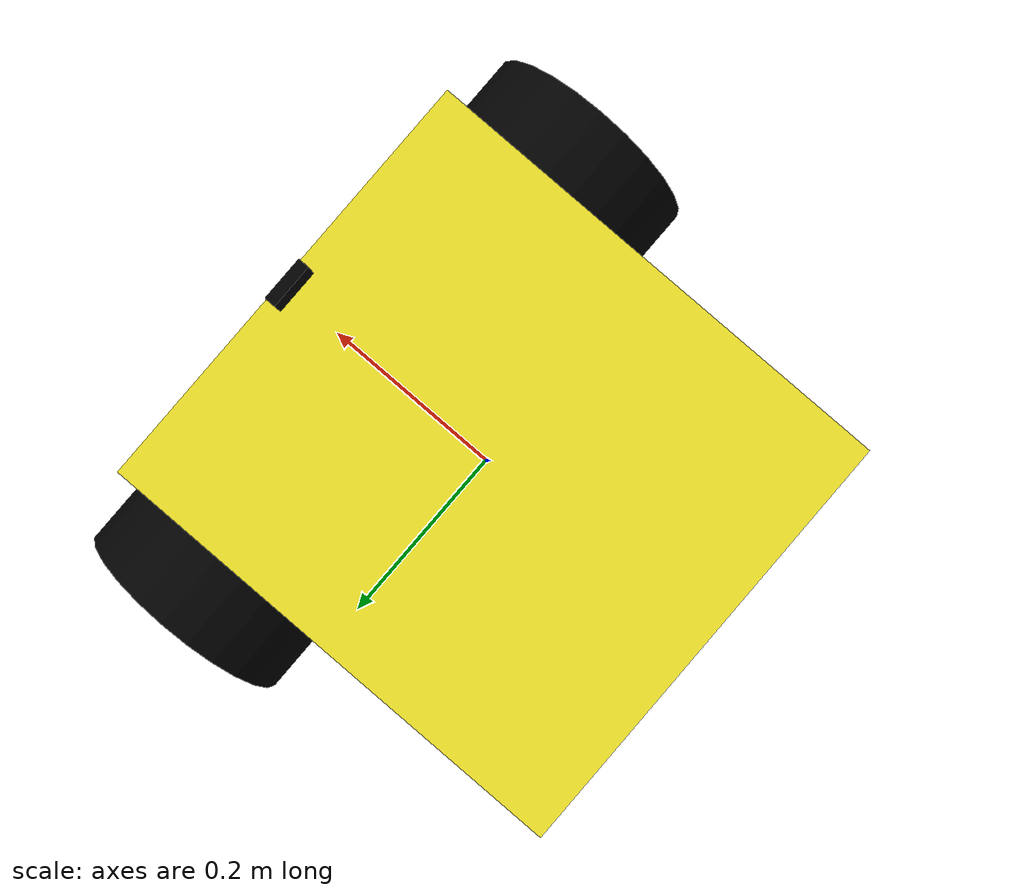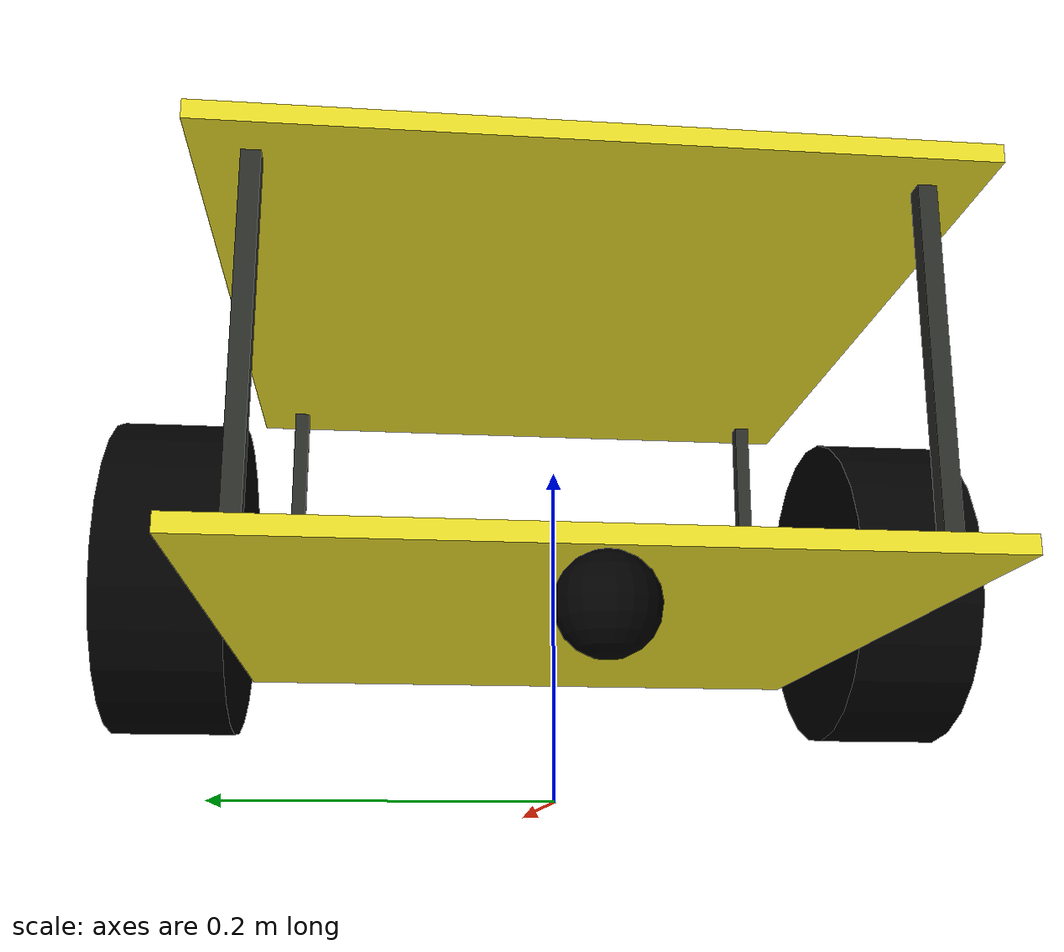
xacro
<?xml version="1.0"?>

<robot name="mrobot" xmlns:xacro="http://www.ros.org/wiki/xacro">

	<xacro:include filename="$(find mrobot_gazebo)/urdf/loui_robot_body.urdf.xacro" />
	<xacro:include filename="$(find mrobot_gazebo)/urdf/camera.xacro" />
	<xacro:include filename="$(find mrobot_gazebo)/urdf/imu.xacro" />

	<xacro:property name="camera_offset_x" value="0.21" />
	<xacro:property name="camera_offset_y" value="0" />
	<xacro:property name="camera_offset_z" value="0.02" />

	<!-- imu parameter:0.12 0 0.005 -->
	<xacro:property name="imu_offset_x" value="0.12" />
	<xacro:property name="imu_offset_y" value="0.0" />
	<xacro:property name="imu_offset_z" value="0.05" />

	<!-- Body of mrobot, with plates, standoffs and Create (including sim sensors) -->
	<mrobot_body/>

	<!-- Attach the Kinect -->
	<joint name="camera_joint" type="fixed">
		<origin xyz="${camera_offset_x} ${camera_offset_y} ${camera_offset_z}" rpy="0 0 0" />
		<parent link="plate_1_link"/>
		<child link="camera_link"/>
	</joint>

	<xacro:usb_camera prefix="camera"/>

	<joint name="imu_joint" type="fixed">
		<origin xyz="${imu_offset_x} ${imu_offset_y} ${imu_offset_z}" rpy="0 0 0" />
		<parent link="base_link"/>
		<child link="imu_link"/>
	</joint>

	<xacro:imu prefix="imu"/>

</robot>

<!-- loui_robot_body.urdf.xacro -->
<robot name="mrobot" xmlns:xacro="http://www.ros.org/wiki/xacro">

    <!-- Defining the colors used in this robot -->
    <material name="Black">
        <color rgba="0 0 0 1"/>
    </material>

    <material name="White">
        <color rgba="1 1 1 1"/>
    </material>

    <material name="Blue">
        <color rgba="0 0 1 1"/>
    </material>

    <material name="Green">
        <color rgba="0 1 0 1"/>
    </material>

    <material name="Red">
        <color rgba="1 0 0 1"/>
    </material>

    <!-- PROPERTY LIST -->
    <!--All units in m-kg-s-radians unit system -->
    <xacro:property name="M_PI" value="3.1415926535897931" />

    <!-- Main body length, width, height and mass -->
    <xacro:property name="base_mass"        value="2.0" />
    <xacro:property name="base_link_length" value="0.44"/>
    <xacro:property name="base_link_width" value="0.40"/>
    <xacro:property name="base_link_height" value="0.01"/>

    <xacro:property name="motor_x" value="0.12"/>

    <!-- Caster radius and mass -->
    <xacro:property name="caster_radius"          value="0.025" />
    <xacro:property name="caster_mass"            value="0.017" />
    <xacro:property name="caster_joint_origin_x"  value="-0.21" />

    <!-- Wheel radius, height and mass -->
    <xacro:property name="wheel_radius" value="0.105" />
    <xacro:property name="wheel_height" value="0.08" />
    <xacro:property name="wheel_mass"   value="2.0" />

    <!-- plate height and mass -->
    <xacro:property name="plate_mass"   value="1.0"/>
    <xacro:property name="plate_height" value="0.20"/>

    <!-- Macro for inertia matrix -->
    <xacro:macro name="sphere_inertial_matrix" params="m r">
        <inertial>
            <mass value="${m}" />
            <inertia ixx="${2*m*r*r/5}" ixy="0" ixz="0"
                iyy="${2*m*r*r/5}" iyz="0"
                izz="${2*m*r*r/5}" />
        </inertial>
    </xacro:macro>

    <xacro:macro name="cylinder_inertial_matrix" params="m r h">
        <inertial>
            <mass value="${m}" />
            <inertia ixx="${m*(3*r*r+h*h)/12}" ixy = "0" ixz = "0"
                iyy="${m*(3*r*r+h*h)/12}" iyz = "0"
                izz="${m*r*r/2}" />
        </inertial>
    </xacro:macro>

    <xacro:macro name="box_inertial_matrix" params="m w h d">
        <inertial>
            <mass value="${m}" />
            <inertia ixx="${m*(h*h+d*d)/12}" ixy = "0" ixz = "0"
                iyy="${m*(w*w+d*d)/12}" iyz = "0"
                izz="${m*(w*w+h*h)/12}" />
        </inertial>
    </xacro:macro>

    <!-- Macro for wheel joint -->
    <xacro:macro name="wheel" params="lr translateY">
        <!-- lr: left, right -->
        <link name="wheel_${lr}_link">
            <visual>
                <origin xyz="0 0 0" rpy="${M_PI/2} 0  0 " />
                <geometry>
                    <cylinder length="${wheel_height}" radius="${wheel_radius}" />
                </geometry>
                <material name="Black" />
            </visual>
            <collision>
                <origin xyz="0 0 0" rpy="${M_PI/2} 0 0 " />
                <geometry>
                    <cylinder length="${wheel_height}" radius="${wheel_radius}" />
                </geometry>
            </collision>
            <cylinder_inertial_matrix  m="${wheel_mass}" r="${wheel_radius}" h="${wheel_height}" />
        </link>

        <gazebo reference="wheel_${lr}_link">
            <material>Gazebo/Black</material>
        </gazebo>

        <joint name="base_to_wheel_${lr}_joint" type="continuous">
            <parent link="base_link"/>
            <child link="wheel_${lr}_link"/>
            <origin xyz="${motor_x} ${translateY * (base_link_width+wheel_height)/2} 0.05" rpy="0 0 0" />
            <axis xyz="0 1 0" rpy="0  0" />
        </joint>

        <!-- Transmission is important to link the joints and the controller -->
        <transmission name="wheel_${lr}_joint_trans">
            <type>transmission_interface/SimpleTransmission</type>
            <joint name="base_to_wheel_${lr}_joint" />
            <actuator name="wheel_${lr}_joint_motor">
                <hardwareInterface>VelocityJointInterface</hardwareInterface>
                <mechanicalReduction>1</mechanicalReduction>
            </actuator>
        </transmission>
    </xacro:macro>

    <!-- Macro for caster joint -->
    <xacro:macro name="caster" params="fb translateX">
        <!-- fb: front, back -->
        <link name="${fb}_caster_link">
            <visual>
                <origin xyz="0 0 0 " rpy="0 0 0" />
                <geometry>
                    <sphere radius="${caster_radius}" />
                </geometry>
                <material name="Black" />
            </visual>
            <collision>
                <geometry>
                    <sphere radius="${caster_radius}" />
                </geometry>
                <origin xyz="0 0 0 " rpy="0 0 0" />
            </collision>
            <sphere_inertial_matrix  m="${caster_mass}" r="${caster_radius}" />
        </link>

        <gazebo reference="${fb}_caster_link">
            <material>Gazebo/Black</material>
        </gazebo>

        <joint name="base_to_${fb}_caster_joint" type="fixed">
            <parent link="base_link"/>
            <child link="${fb}_caster_link"/>
            <origin xyz="${translateX*caster_joint_origin_x} 0 ${-caster_radius-base_link_height/2}" rpy="0 0 0"/>
        </joint>
    </xacro:macro>

    <!-- Macro for plate joint -->
    <xacro:macro name="plate" params="num parent">
        <link name="plate_${num}_link">
            <box_inertial_matrix  m="${plate_mass}" w="${base_link_length}" h="${base_link_width}" d="${base_link_height}" />

            <visual>
                <origin xyz=" 0 0 0 " rpy="0 0 0" />
                <geometry>
                    <box  size="${base_link_length} ${base_link_width} ${base_link_height}" />
                </geometry>
                <material name="yellow"/>
            </visual>

            <collision>
                <origin xyz="0.0 0.0 0.0" rpy="0 0 0" />
                <geometry>
                    <box  size="${base_link_length} ${base_link_width} ${base_link_height}" />
                </geometry>
            </collision>
        </link>
        <gazebo reference="plate_${num}_link">
            <material>Gazebo/Blue</material>
        </gazebo>
        <joint name="plate_${num}_joint" type="fixed">
            <origin xyz="0 0 ${plate_height}" rpy="0 0 0" />
            <parent link="${parent}"/>
            <child link="plate_${num}_link" />
        </joint>
    </xacro:macro>

    <!-- Macro for standoff joint -->
    <xacro:macro name="mrobot_standoff_2in" params="parent number x_loc y_loc z_loc">
        <joint name="standoff_2in_${number}_joint" type="fixed">
            <origin xyz="${x_loc} ${y_loc} ${z_loc}" rpy="0 0 0" />
            <parent link="${parent}"/>
            <child link="standoff_2in_${number}_link" />
        </joint>

        <link name="standoff_2in_${number}_link">
            <inertial>
                <mass value="0.001" />
                <origin xyz="0 0 0" />
                <inertia ixx="0.0001" ixy="0.0" ixz="0.0"
          iyy="0.0001" iyz="0.0"
          izz="0.0001" />
            </inertial>

            <visual>
                <origin xyz=" 0 0 0 " rpy="0 0 0" />
                <geometry>
                    <box size="0.01 0.01 0.20" />
                </geometry>
                <material name="black">
                    <color rgba="0.16 0.17 0.15 0.9"/>
                </material>
            </visual>

            <collision>
                <origin xyz="0.0 0.0 0.0" rpy="0 0 0" />
                <geometry>
                    <box size="0.01 0.01 0.20" />
                </geometry>
            </collision>
        </link>
    </xacro:macro>

    <!-- BASE-FOOTPRINT -->
    <!-- base_footprint is a fictitious link(frame) that is on the ground right below base_link origin -->
    <xacro:macro name="mrobot_body">
        <link name="base_footprint">
            <visual>
                <origin xyz="0 0 0" rpy="0 0 0" />
                <geometry>
                    <box size="0.001 0.001 0.001" />
                </geometry>
            </visual>
        </link>

        <joint name="base_footprint_joint" type="fixed">
            <origin xyz="0 0 ${wheel_radius}" rpy="0 0 0" />
            <parent link="base_footprint"/>
            <child link="base_link" />
        </joint>

        <!-- BASE-LINK -->
        <!--Actual body/chassis of the robot-->
        <link name="base_link">
            <box_inertial_matrix  m="${base_mass}" w="${base_link_length}" h="${base_link_width}" d="${base_link_height}" />
            <visual>
                <origin xyz=" 0 0 0" rpy="0 0 0" />
                <geometry>
                    <box  size="${base_link_length} ${base_link_width} ${base_link_height}" />
                </geometry>
                <material name="yellow" />
            </visual>

            <collision>
                <origin xyz="0 0 0" rpy="0 0 0" />
                <geometry>
                    <box  size="${base_link_length} ${base_link_width} ${base_link_height}" />
                </geometry>
            </collision>
        </link>
        <gazebo reference="base_link">
            <material>Gazebo/Blue</material>
        </gazebo>

        <!-- Wheel Definitions -->
        <wheel lr="right"  translateY="1" />
        <wheel lr="left"  translateY="-1" />

        <!-- Casters Definitions -->
        <caster fb="front"  translateX="1" />

        <!-- plates and standoff Definitions -->
        <mrobot_standoff_2in parent="base_link" number="1" x_loc="-${base_link_length/2 - 0.03}" y_loc="-${base_link_width/2 - 0.03}" z_loc="${plate_height/2}"/>
        <mrobot_standoff_2in parent="base_link" number="2" x_loc="-${base_link_length/2 - 0.03}" y_loc="${base_link_width/2 - 0.03}" z_loc="${plate_height/2}"/>
        <mrobot_standoff_2in parent="base_link" number="3" x_loc="${base_link_length/2 - 0.03}" y_loc="-${base_link_width/2 - 0.03}" z_loc="${plate_height/2}"/>
        <mrobot_standoff_2in parent="base_link" number="4" x_loc="${base_link_length/2 - 0.03}" y_loc="${base_link_width/2 - 0.03}" z_loc="${plate_height/2}"/>

        <!-- plate Definitions -->
        <plate num="1"  parent="base_link" />

        <!-- controller -->
        <gazebo>
            <plugin name="differential_drive_controller" filename="libgazebo_ros_diff_drive.so">
                <rosDebugLevel>Debug</rosDebugLevel>
                <publishWheelTF>true</publishWheelTF>
                <robotNamespace>/</robotNamespace>
                <publishTf>1</publishTf>
                <publishWheelJointState>true</publishWheelJointState>
                <alwaysOn>true</alwaysOn>
                <updateRate>200.0</updateRate>
                <legacyMode>true</legacyMode>
                <leftJoint>base_to_wheel_left_joint</leftJoint>
                <rightJoint>base_to_wheel_right_joint</rightJoint>
                <wheelSeparation>${base_link_width+wheel_height}</wheelSeparation>
                <wheelDiameter>${2*wheel_radius}</wheelDiameter>
                <broadcastTF>1</broadcastTF>
                <wheelTorque>30</wheelTorque>
                <wheelAcceleration>1.8</wheelAcceleration>
                <commandTopic>cmd_vel</commandTopic>
                <odometryFrame>odom</odometryFrame>
                <odometryTopic>odom</odometryTopic>
                <robotBaseFrame>base_footprint</robotBaseFrame>
            </plugin>
        </gazebo>

    </xacro:macro>
</robot>

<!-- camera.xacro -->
<robot name="camera" xmlns:xacro="http://www.ros.org/wiki/xacro">

	<xacro:macro name="usb_camera" params="prefix:=camera">
		<link name="${prefix}_link">
			<inertial>
				<mass value="0.1"/>
				<origin xyz="0 0 0"/>
				<inertia ixx="0.01" ixy="0.0" ixz="0.0" iyy="0.01" iyz="0.0" izz="0.01"/>
			</inertial>
			<visual>
				<origin xyz="0 0 0" rpy="0 0 0"/>
				<geometry>
					<box size="0.01 0.04 0.04"/>
				</geometry>
				<material name="Black"/>
			</visual>
			<collision>
				<origin xyz="0 0 0" rpy="0 0 0"/>
				<geometry>
					<box size="0.01 0.04 0.04"/>
				</geometry>
			</collision>
		</link>
		<gazebo reference="${prefix}_link">
            <material>Gazebo/Black</material>
        </gazebo>

        <gazebo reference="${prefix}_link">
            <sensor type="camera" name="camera_node">
                <update_rate>30.0</update_rate>
                <camera name="head">
                    <horizontal_fov>1.3962634</horizontal_fov>
                    <image>
                        <width>1280</width>
                        <height>720</height>
                        <format>R8G8B8</format>
                    </image>
                    <clip>
                        <near>0.02</near>
                        <far>300</far>
                    </clip>
                    <noise>
                        <type>gaussian</type>
                        <mean>0.0</mean>
                        <stddev>0.007</stddev>
                    </noise>
                </camera>
                <plugin name="gazebo_camera" filename="libgazebo_ros_camera.so">
                    <alwaysOn>true</alwaysOn>
                    <updateRate>0.0</updateRate>
                    <cameraName>/camera</cameraName>
                    <imageTopicName>image_raw</imageTopicName>
                    <cameraInfoTopicName>camera_info</cameraInfoTopicName>
                    <frameName>camera_link</frameName>
                    <hackBaseline>0.07</hackBaseline>
                    <distortionK1>0.0</distortionK1>
                    <distortionK2>0.0</distortionK2>
                    <distortionK3>0.0</distortionK3>
                    <distortionT1>0.0</distortionT1>
                    <distortionT2>0.0</distortionT2>
                </plugin>
            </sensor>
        </gazebo>
	</xacro:macro>
</robot>

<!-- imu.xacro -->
<robot xmlns:xacro="http://www.ros.org/wiki/xacro" name="imu">

    <xacro:property name="imu_size"     value="0.03" />
    <xacro:property name="imu_height"    value="0.01" />

    <xacro:macro name="imu" params="prefix:=imu">
        <link name="${prefix}_link">
            <inertial>
                <mass value="0.005" />
                <origin xyz="0 0 0" />
                <inertia ixx="0.0005" ixy="0.0" ixz="0.0"
                         iyy="0.0005" iyz="0.0"
                         izz="0.0005" />
            </inertial>

            <visual>
               <origin rpy="0 0 0" xyz="0 0 0" />
               <geometry>
                    <box size="${imu_size} ${imu_size} ${imu_height}"/>
               </geometry>
              <material name="red"/>
            </visual>
            <collision>
                <origin xyz="0.0 0.0 0.0" rpy="0 0 0" />
                <geometry>
                    <box size="${imu_size} ${imu_size} ${imu_height}"/>
                </geometry>
            </collision>
    </link>
        <gazebo reference="${prefix}_link">
            <material>Gazebo/Black</material>
        </gazebo>

      <gazebo reference="${prefix}_link">
        <gravity>true</gravity>
        <sensor name="imu_sensor" type="imu">
            <always_on>true</always_on>
            <update_rate>200</update_rate>
            <visualize>true</visualize>
            <topic>__default_topic__</topic>
            <plugin filename="libgazebo_ros_imu_sensor.so" name="imu_plugin">
                <topicName>imu</topicName>
                <bodyName>imu_link</bodyName>
                <updateRateHZ>200.0</updateRateHZ>
                <gaussianNoise>0.0</gaussianNoise>
                <xyzOffset>0 0 0</xyzOffset>
                <rpyOffset>0 0 0</rpyOffset>
                <frameName>imu_link</frameName>
            </plugin>
            <pose>0 0 0 0 0 0</pose>
        </sensor>
    </gazebo>

    </xacro:macro>
</robot>
